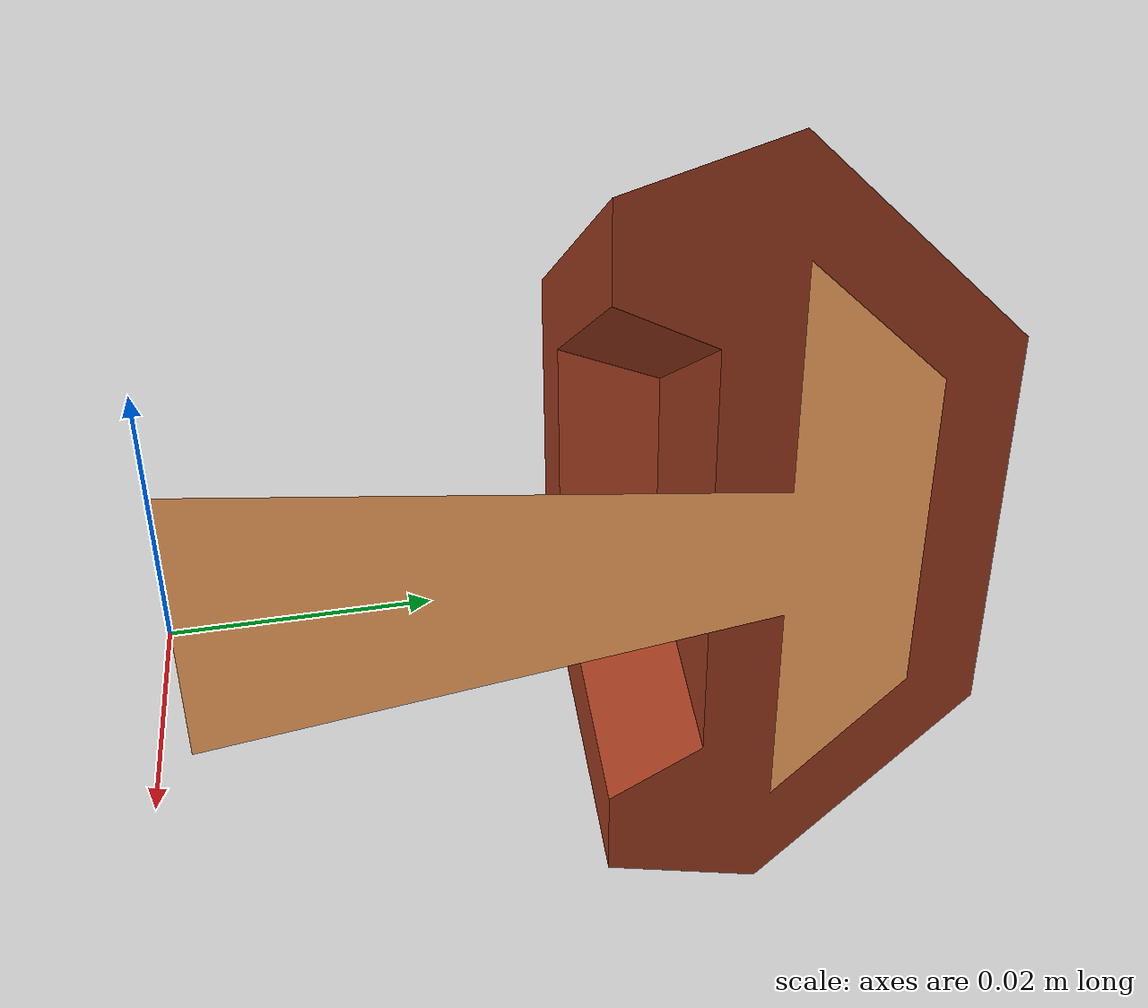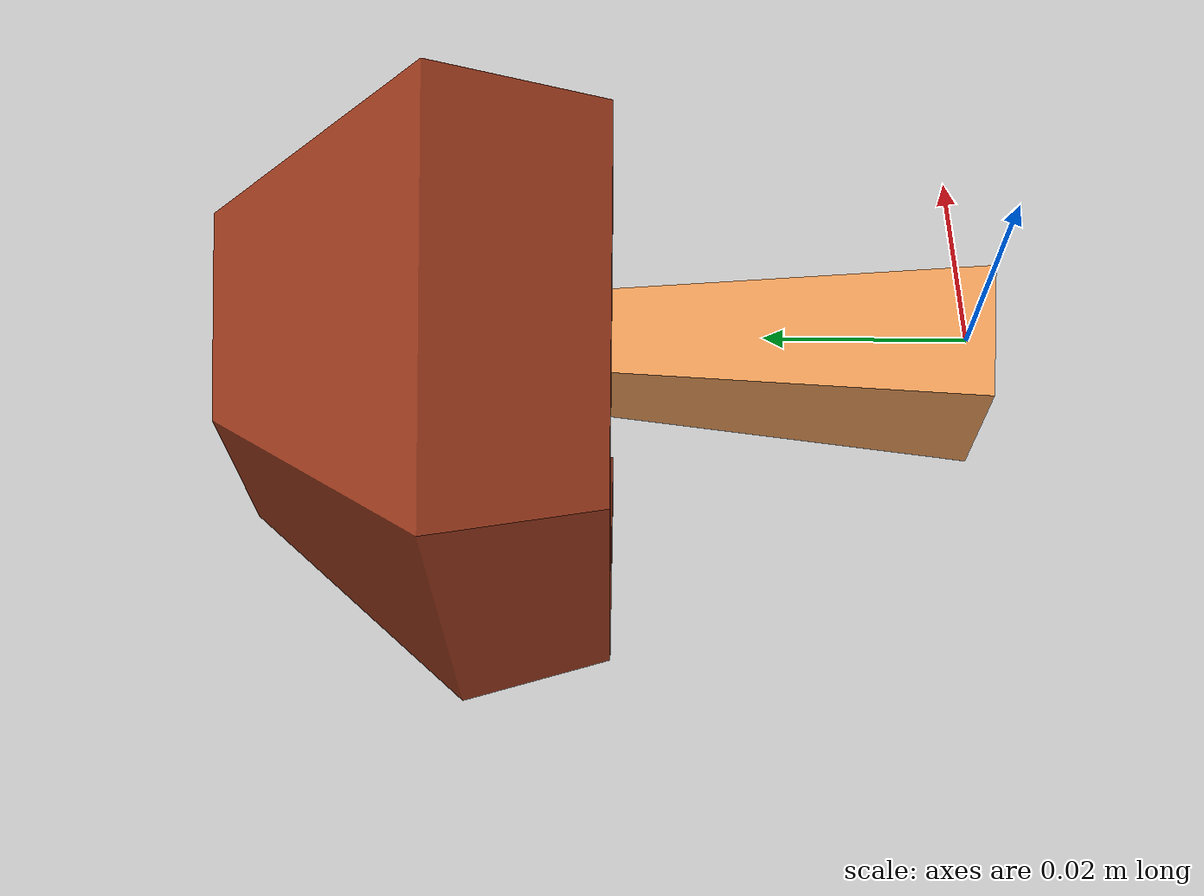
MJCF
<mujoco model="mushroomHalf">
  <default>
    <default class="visual">
      <geom group="2" type="mesh" contype="0" conaffinity="0"/>
    </default>
    <default class="collision">
      <geom group="3" type="mesh" rgba="0 0 1 1"/>
    </default>
  </default>
  <asset>
    <material name="brownDark" specular="0.0" shininess="0.0" rgba="0.600000 0.220000 0.110000 1.000000"/>
    <material name="brownLight" specular="0.0" shininess="0.0" rgba="0.980000 0.650000 0.370000 1.000000"/>
    <mesh file="mushroomHalf_0.obj"/>
    <mesh file="mushroomHalf_1.obj"/>
  </asset>
  <worldbody>
    <body name="mushroomHalf">
      <geom mesh="mushroomHalf_0" material="brownLight" class="visual"/>
      <geom mesh="mushroomHalf_1" material="brownDark" class="visual"/>
      <geom mesh="mushroomHalf_0" class="collision"/>
      <geom mesh="mushroomHalf_1" class="collision"/>
    </body>
  </worldbody>
</mujoco>
